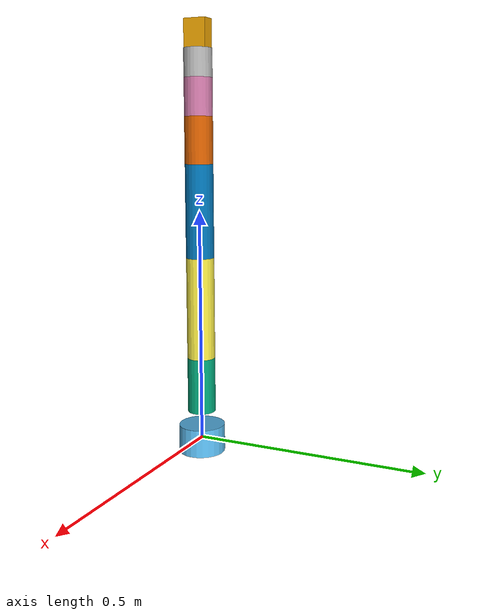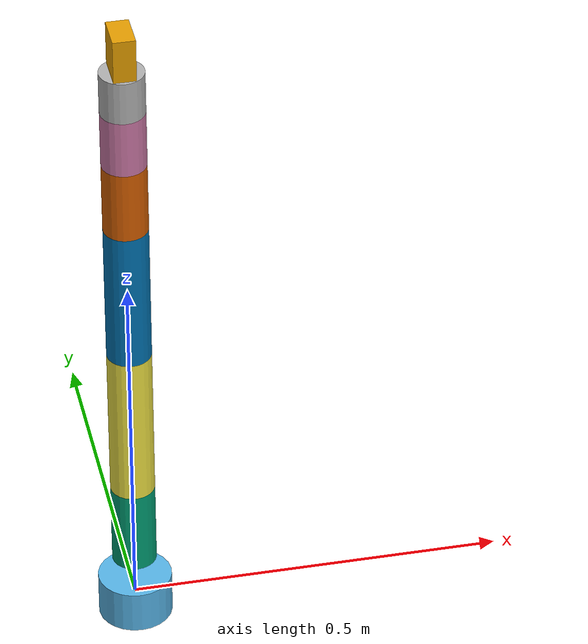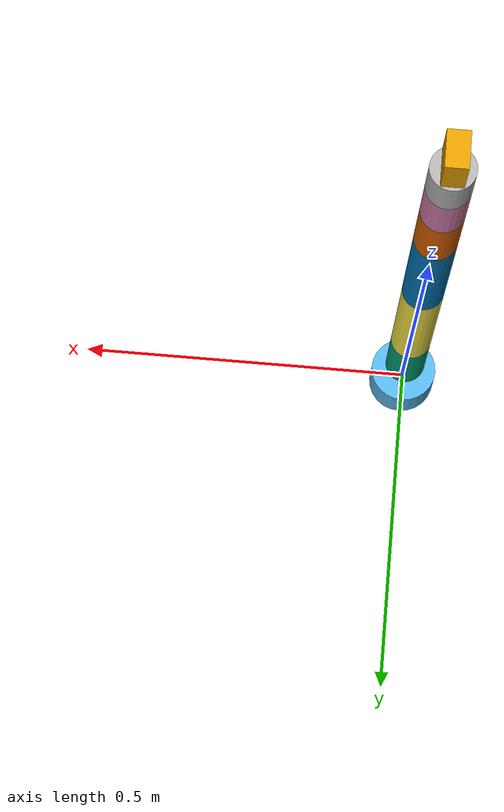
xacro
<?xml version="1.0"?>
<robot xmlns:xacro="http://www.ros.org/wiki/xacro" name="damiao_arm">
  <xacro:arg name="use_fake_hardware" default="false"/>
  <xacro:arg name="can_interface" default="vcan0"/>
  <xacro:arg name="enable_fd" default="false"/>
  <xacro:arg name="has_gripper" default="true"/>
  <xacro:arg name="state_timeout_ms" default="500"/>
  <xacro:arg name="command_timeout_ms" default="100"/>
  <xacro:arg name="motor_timeout_reg" default="0"/>
  <xacro:arg name="use_usb_bridge" default="false"/>
  <xacro:arg name="serial_port" default="/dev/ttyACM0"/>
  <xacro:arg name="baudrate" default="921600"/>
  <xacro:arg name="default_kp" default="25.0"/>
  <xacro:arg name="default_kd" default="1.0"/>
  <xacro:arg name="gripper_kp" default="8.0"/>
  <xacro:arg name="gripper_kd" default="0.2"/>

  <link name="world"/>

  <joint name="base_fixed" type="fixed">
    <parent link="world"/>
    <child link="base_link"/>
  </joint>

  <link name="base_link">
    <visual>
      <geometry><cylinder length="0.06" radius="0.05"/></geometry>
    </visual>
  </link>

  <xacro:macro name="arm_link" params="name length:=0.18 radius:=0.03">
    <link name="${name}">
      <visual>
        <origin xyz="0 0 ${length/2.0}" rpy="0 0 0"/>
        <geometry><cylinder length="${length}" radius="${radius}"/></geometry>
      </visual>
    </link>
  </xacro:macro>

  <xacro:arm_link name="link1" length="0.12"/>
  <xacro:arm_link name="link2" length="0.22"/>
  <xacro:arm_link name="link3" length="0.20"/>
  <xacro:arm_link name="link4" length="0.10"/>
  <xacro:arm_link name="link5" length="0.08"/>
  <xacro:arm_link name="link6" length="0.06"/>

  <joint name="joint1" type="revolute">
    <parent link="base_link"/>
    <child link="link1"/>
    <origin xyz="0 0 0.06" rpy="0 0 0"/>
    <axis xyz="0 0 1"/>
    <limit lower="-3.1416" upper="3.1416" effort="10.0" velocity="30.0"/>
  </joint>

  <joint name="joint2" type="revolute">
    <parent link="link1"/>
    <child link="link2"/>
    <origin xyz="0 0 0.12" rpy="0 0 0"/>
    <axis xyz="0 1 0"/>
    <limit lower="-3.1416" upper="3.1416" effort="10.0" velocity="30.0"/>
  </joint>

  <joint name="joint3" type="revolute">
    <parent link="link2"/>
    <child link="link3"/>
    <origin xyz="0 0 0.22" rpy="0 0 0"/>
    <axis xyz="0 1 0"/>
    <limit lower="-3.1416" upper="3.1416" effort="10.0" velocity="30.0"/>
  </joint>

  <joint name="joint4" type="revolute">
    <parent link="link3"/>
    <child link="link4"/>
    <origin xyz="0 0 0.20" rpy="0 0 0"/>
    <axis xyz="0 0 1"/>
    <limit lower="-3.1416" upper="3.1416" effort="10.0" velocity="30.0"/>
  </joint>

  <joint name="joint5" type="revolute">
    <parent link="link4"/>
    <child link="link5"/>
    <origin xyz="0 0 0.10" rpy="0 0 0"/>
    <axis xyz="0 1 0"/>
    <limit lower="-3.1416" upper="3.1416" effort="10.0" velocity="30.0"/>
  </joint>

  <joint name="joint6" type="revolute">
    <parent link="link5"/>
    <child link="link6"/>
    <origin xyz="0 0 0.08" rpy="0 0 0"/>
    <axis xyz="0 0 1"/>
    <limit lower="-3.1416" upper="3.1416" effort="10.0" velocity="30.0"/>
  </joint>

  <xacro:if value="$(arg has_gripper)">
    <link name="gripper_link">
      <visual>
        <origin xyz="0 0 0.03" rpy="0 0 0"/>
        <geometry><box size="0.03 0.05 0.06"/></geometry>
      </visual>
    </link>
    <joint name="gripper_joint" type="revolute">
      <parent link="link6"/>
      <child link="gripper_link"/>
      <origin xyz="0 0 0.06" rpy="0 0 0"/>
      <axis xyz="0 1 0"/>
      <limit lower="-3.1416" upper="3.1416" effort="10.0" velocity="30.0"/>
    </joint>
  </xacro:if>

  <xacro:macro name="ros2_control_joint" params="name send_id recv_id motor_type:=DM4310">
    <joint name="${name}">
      <param name="motor_type">${motor_type}</param>
      <param name="send_can_id">${send_id}</param>
      <param name="recv_can_id">${recv_id}</param>
      <param name="pos_min">-3.1416</param>
      <param name="pos_max">3.1416</param>
      <command_interface name="position"/>
      <command_interface name="velocity"/>
      <command_interface name="effort"/>
      <xacro:unless value="$(arg use_fake_hardware)">
        <command_interface name="kp"/>
        <command_interface name="kd"/>
      </xacro:unless>
      <state_interface name="position">
        <param name="initial_value">0.0</param>
      </state_interface>
      <state_interface name="velocity">
        <param name="initial_value">0.0</param>
      </state_interface>
      <state_interface name="effort">
        <param name="initial_value">0.0</param>
      </state_interface>
    </joint>
  </xacro:macro>

  <ros2_control name="DamiaoArmSystem" type="system">
    <hardware>
      <xacro:if value="$(arg use_fake_hardware)">
        <plugin>mock_components/GenericSystem</plugin>
        <param name="calculate_dynamics">true</param>
      </xacro:if>
      <xacro:unless value="$(arg use_fake_hardware)">
        <plugin>damiao_arm_hardware/DamiaoSystemHardware</plugin>
        <param name="can_interface">$(arg can_interface)</param>
        <param name="enable_fd">$(arg enable_fd)</param>
        <param name="has_gripper">$(arg has_gripper)</param>
        <param name="state_timeout_ms">$(arg state_timeout_ms)</param>
        <param name="command_timeout_ms">$(arg command_timeout_ms)</param>
        <param name="motor_timeout_reg">$(arg motor_timeout_reg)</param>
        <param name="use_usb_bridge">$(arg use_usb_bridge)</param>
        <param name="serial_port">$(arg serial_port)</param>
        <param name="baudrate">$(arg baudrate)</param>
        <param name="default_kp">$(arg default_kp)</param>
        <param name="default_kd">$(arg default_kd)</param>
        <param name="gripper_kp">$(arg gripper_kp)</param>
        <param name="gripper_kd">$(arg gripper_kd)</param>
      </xacro:unless>
    </hardware>

    <xacro:ros2_control_joint name="joint1" send_id="0x01" recv_id="0x11"/>
    <xacro:ros2_control_joint name="joint2" send_id="0x02" recv_id="0x12"/>
    <xacro:ros2_control_joint name="joint3" send_id="0x03" recv_id="0x13"/>
    <xacro:ros2_control_joint name="joint4" send_id="0x04" recv_id="0x14"/>
    <xacro:ros2_control_joint name="joint5" send_id="0x05" recv_id="0x15"/>
    <xacro:ros2_control_joint name="joint6" send_id="0x06" recv_id="0x16"/>
    <xacro:if value="$(arg has_gripper)">
      <xacro:ros2_control_joint name="gripper_joint" send_id="0x07" recv_id="0x17"/>
    </xacro:if>
  </ros2_control>
</robot>
